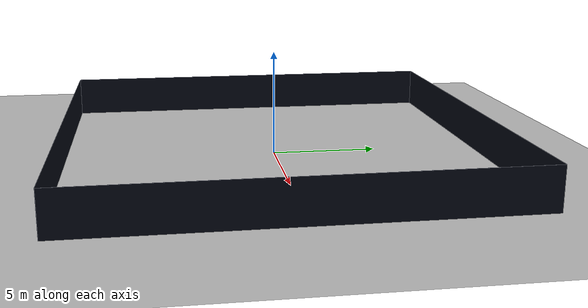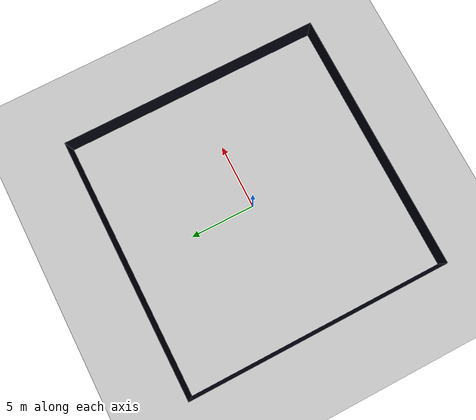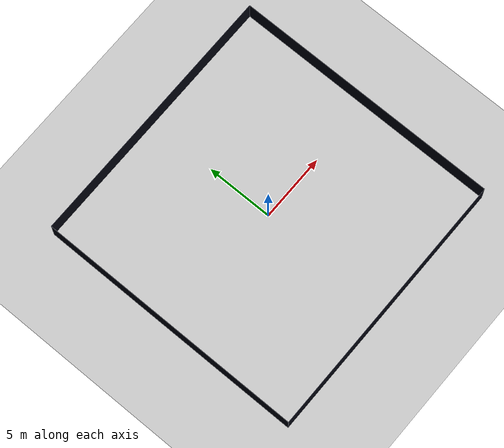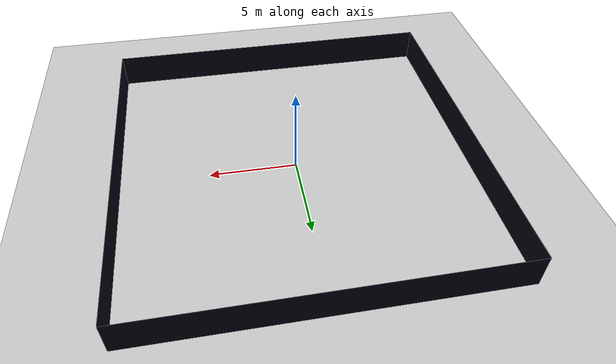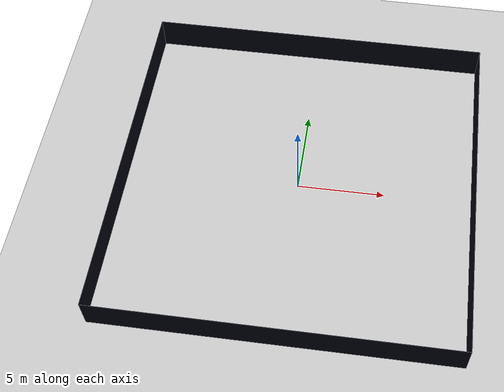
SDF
<?xml version="1.0"?>
<sdf version='1.8'>
    <world name='maze'>
      <physics name='1ms' type='ode'>
            <max_step_size>0.01</max_step_size>
            <real_time_update_rate>0</real_time_update_rate>
      </physics>

        <plugin name='ignition::gazebo::systems::Physics' filename='ignition-gazebo-physics-system' />
        <plugin name='ignition::gazebo::systems::UserCommands' filename='ignition-gazebo-user-commands-system' />
        <plugin name='ignition::gazebo::systems::SceneBroadcaster' filename='ignition-gazebo-scene-broadcaster-system' />
        <plugin name='ignition::gazebo::systems::Contact' filename='ignition-gazebo-contact-system' />

      <plugin name="ignition::gazebo::RandomizedSpawnerECS" filename="libRandomizedSpawner.so">
	<robot_name>turtlebot4</robot_name>
	<base_seed>42</base_seed>

	<!-- Existing sampling annuli -->
	<goal_r_min>0.4</goal_r_min>
	<goal_r_max>0.7</goal_r_max>

	<obs_r_min>0.5</obs_r_min>
	<obs_r_max>0.7</obs_r_max>

	<sample_about_robot>false</sample_about_robot>
	<sample_center_x>0.0</sample_center_x>
	<sample_center_y>0.0</sample_center_y>

	<!-- Footprints -->
	<target_half_width>0.10</target_half_width>
	<target_half_depth>0.10</target_half_depth>
	<target_aabb_height>0.40</target_aabb_height>

	<obs_size_x>0.40</obs_size_x>
	<obs_size_y>0.40</obs_size_y>
	<obs_size_z>0.75</obs_size_z>

	<!-- Separation between target and obstacle AABBs -->
	<extra_separation>0.08</extra_separation>

	<!-- New: rejection sampling limits -->
	<max_goal_tries>300</max_goal_tries>
	<max_obs_tries>300</max_obs_tries>

	<!-- New: wall robustness (prevents near-wall deadlocks) -->
	<wall_margin>0.05</wall_margin>

	<!-- New: if strict placement fails, retry with smaller separation -->
	<relax_on_fail>true</relax_on_fail>
	<relax_factor>0.5</relax_factor> <!-- new_sep = extra_separation * relax_factor -->

	<!-- New: if still fails, reuse last success (or safe default) instead of stalling -->
	<use_last_success_fallback>true</use_last_success_fallback>

	<!-- New: ignore these names when checking AABB collisions.
	     Add multiple tags, one per substring.
	     YOU SHOULD EDIT THESE to match your world model names. -->
	<ignore_name_contains>ground_plane</ignore_name_contains>
	<ignore_name_contains>floor</ignore_name_contains>
	<ignore_name_contains>sun</ignore_name_contains>
	<ignore_name_contains>light</ignore_name_contains>
	<ignore_name_contains>arena</ignore_name_contains>

	<!-- Existing (kept) -->
	<require_in_fov>false</require_in_fov>
	<hfov_deg>90</hfov_deg>

	<!-- Bounds -->
	<min_x>-5</min_x><max_x>5</max_x>
	<min_y>-5</min_y><max_y>5</max_y>

	<half_width>0.5</half_width>
	<half_depth>0.5</half_depth>
	<aabb_height>2.0</aabb_height>
      </plugin>

      <plugin name="ignition::gazebo::v6::systems::Sensors" filename="libignition-gazebo-sensors-system.so"/>

      <plugin name="path_length_plugin" filename="libPathLengthPlugin.so">
	<resolution>0.01</resolution>        <!-- m/cell -->
	<padding>1.0</padding>               <!-- expand X/Y bounds -->
	<static_only>true</static_only>      <!-- ignore moving objects (optional) -->
	<diag>true</diag>                    <!-- 8-connected grid -->
	<goal_topic>/random_pose_res</goal_topic>
	<result_topic>/path_length/optimal</result_topic>
      </plugin>

      <light name='sun' type='directional'>
            <cast_shadows>1</cast_shadows>
            <pose>0 0 10 0 -0 0</pose>
            <diffuse>0.8 0.8 0.8 1</diffuse>
            <specular>0.2 0.2 0.2 1</specular>
            <attenuation>
                <range>1000</range>
                <constant>0.90000000000000002</constant>
                <linear>0.01</linear>
                <quadratic>0.001</quadratic>
            </attenuation>
            <direction>-0.5 0.1 -0.9</direction>
            <spot>
                <inner_angle>0</inner_angle>
                <outer_angle>0</outer_angle>
                <falloff>0</falloff>
            </spot>
      </light>
        <gravity>0 0 -9.8</gravity>
        <magnetic_field>6e-06 2.3e-05 -4.2e-05</magnetic_field>
        <atmosphere type='adiabatic' />
        <scene>
            <ambient>0.4 0.4 0.4 1</ambient>
            <background>0.7 0.7 0.7 1</background>
            <shadows>0</shadows>
        </scene>
	<!-- added -->
	<plugin name="ignition::gazebo::systems::SceneBroadcaster" filename="libignition-gazebo-scene-broadcaster-system.so"/>
	<!-- added -->
	<model name='ground_plane'>
            <static>1</static>
            <link name='link'>
                <collision name='collision'>
                    <geometry>
                        <plane>
                            <normal>0 0 1</normal>
                            <size>100 100</size>
                        </plane>
                    </geometry>
                    <surface>
                        <friction>
                            <ode />
                        </friction>
                        <bounce />
                        <contact />
                    </surface>
                </collision>
                <visual name='visual'>
                    <geometry>
                        <plane>
                            <normal>0 0 1</normal>
                            <size>100 100</size>
                        </plane>
                    </geometry>
                    <material>
                        <ambient>0.8 0.8 0.8 1</ambient>
                        <diffuse>0.8 0.8 0.8 1</diffuse>
                        <specular>0.8 0.8 0.8 1</specular>
                    </material>
                    <plugin name='__default__' filename='__default__' />
                </visual>
            </link>
            <plugin name='__default__' filename='__default__' />
            <pose>0 0 0 0 -0 0</pose>
        </model>

        <model name='border'>
            <pose>0 0 1 0 0 0</pose>
            <static>true</static>
            <link name='wall1'>
                <pose>-10.005 0 0 0 0 0</pose>
                <static>true</static>
                <collision name='wall1_collision'>
                    <geometry>
                        <box>
                            <size>0.01 20 2</size>
                        </box>
                    </geometry>
                </collision>
                <visual name='wall1_visual'>
                    <geometry>
                        <box>
                            <size>0.01 20 2</size>
                        </box>
                    </geometry>
                    <material>
                        <ambient>0.1 0.1 0.1 1</ambient>
                        <diffuse>0 0.01 0.05 1</diffuse>
                        <specular>0 0.01 0.05 1</specular>
                    </material>
                </visual>
            </link>
            <link name='wall2'>
                <pose>10.005 0 0 0 0 0</pose>
                <static>true</static>
                <collision name='wall2_collision'>
                    <geometry>
                        <box>
                            <size>0.01 20 2</size>
                        </box>
                    </geometry>
                </collision>
                <visual name='wall2_visual'>
                    <geometry>
                        <box>
                            <size>0.01 20 2</size>
                        </box>
                    </geometry>
                    <material>
                        <ambient>0.1 0.1 0.1 1</ambient>
                        <diffuse>0 0.01 0.05 1</diffuse>
                        <specular>0 0.01 0.05 1</specular>
                    </material>
                </visual>
            </link>
            <link name='wall3'>
                <pose>0 10.005 0 0 0 0</pose>
                <static>true</static>
                <collision name='wall3_collision'>
                    <geometry>
                        <box>
                            <size>20 0.01 2</size>
                        </box>
                    </geometry>
                </collision>
                <visual name='wall3_visual'>
                    <geometry>
                        <box>
                            <size>20 0.01 2</size>
                        </box>
                    </geometry>
                    <material>
                        <ambient>0.1 0.1 0.1 1</ambient>
                        <diffuse>0 0.01 0.05 1</diffuse>
                        <specular>0 0.01 0.05 1</specular>
                    </material>
                </visual>
            </link>
            <link name='wall4'>
                <pose>0 -10.005 0 0 0 0</pose>
                <static>true</static>
                <collision name='wall4_collision'>
                    <geometry>
                        <box>
                            <size>20 0.01 2</size>
                        </box>
                    </geometry>
                    <material>
                        <ambient>0.1 0.1 0.1 1</ambient>
                        <diffuse>0 0.01 0.05 1</diffuse>
                        <specular>0 0.01 0.05 1</specular>
                    </material>
                </collision>
                <visual name='wall4_visual'>
                    <geometry>
                        <box>
                            <size>20 0.01 2</size>
                        </box>
                    </geometry>
                    <material>
                        <ambient>0.1 0.1 0.1 1</ambient>
                        <diffuse>0 0.01 0.05 1</diffuse>
                        <specular>0 0.01 0.05 1</specular>
                    </material>
                </visual>
            </link>
        </model>

    </world>
</sdf>
